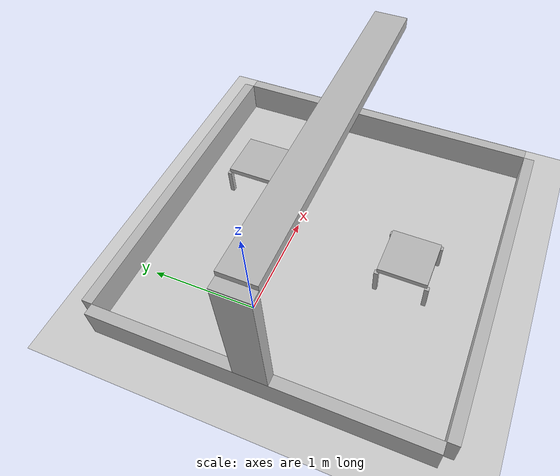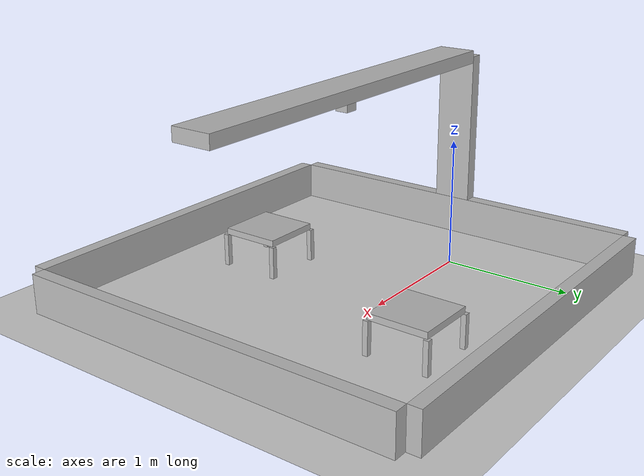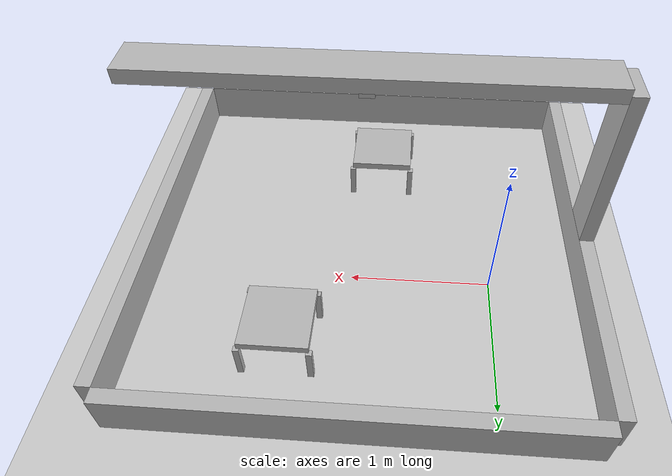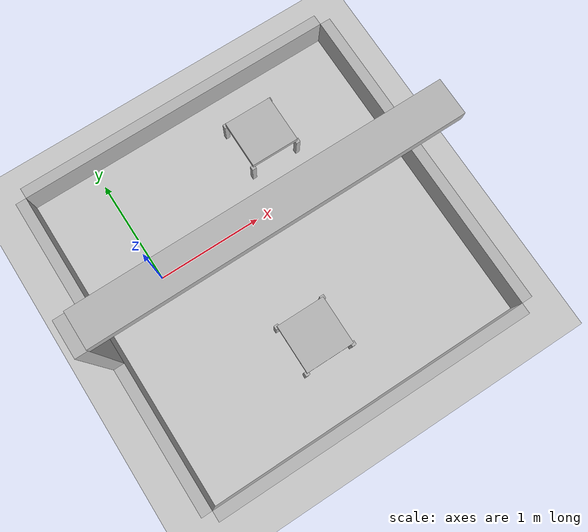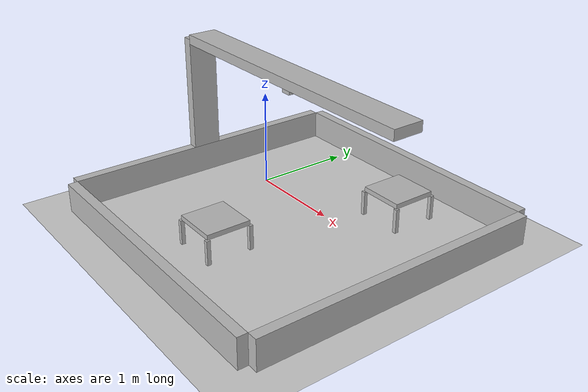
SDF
<sdf version="1.7">
 <world name="default">
  <light name="sun" type="directional">
   <pose>0 0 10 0 -0 0</pose>
   <diffuse>0.8 0.8 0.8 1</diffuse>
   <specular>0.2 0.2 0.2 1</specular>
   <attenuation>
    <range>1000</range>
    <constant>0.9</constant>
    <linear>0.01</linear>
    <quadratic>0.001</quadratic>
   </attenuation>
   <direction>-0.5 0.1 -0.9</direction>
   <spot><inner_angle>0</inner_angle><outer_angle>0</outer_angle><falloff>0</falloff></spot>
  </light>
  <model name="ground_plane">
   <static>1</static>
   <link name="link">
    <collision name="collision">
     <geometry><plane><normal>0 0 1</normal><size>100 100</size></plane></geometry>
     <surface><friction><ode><mu>100</mu><mu2>50</mu2></ode></friction></surface>
    </collision>
    <visual name="visual">
     <cast_shadows>0</cast_shadows>
     <geometry><plane><normal>0 0 1</normal><size>100 100</size></plane></geometry>
     <material>
      <script><uri>file://media/materials/scripts/gazebo.material</uri><name>Gazebo/Grey</name></script>
     </material>
    </visual>
   </link>
  </model>
  <gravity>0 0 -9.8</gravity>
  <magnetic_field>6e-06 2.3e-05 -4.2e-05</magnetic_field>
  <atmosphere type="adiabatic"/>
  <physics type="ode">
   <max_step_size>0.001</max_step_size>
   <real_time_factor>1</real_time_factor>
   <real_time_update_rate>1000</real_time_update_rate>
  </physics>
  <scene><ambient>0.4 0.4 0.4 1</ambient><background>0.7 0.7 0.7 1</background><shadows>1</shadows></scene>
  <spherical_coordinates>
   <surface_model>EARTH_WGS84</surface_model>
   <latitude_deg>0</latitude_deg>
   <longitude_deg>0</longitude_deg>
   <elevation>0</elevation>
   <heading_deg>0</heading_deg>
  </spherical_coordinates>
  <model name="bounding_box">
   <static>1</static>
   <link name="left_wall">
    <pose>0 -1.5748 0.1524 0 -0 0</pose>
    <collision name="left_wall_collision">
     <geometry><box><size>3.048 0.1016 0.3048</size></box></geometry>
     <surface><friction><ode><mu>100</mu><mu2>50</mu2></ode></friction></surface>
    </collision>
    <visual name="left_wall_visual"><geometry><box><size>3.048 0.1016 0.3048</size></box></geometry></visual>
   </link>
   <link name="right_wall">
    <pose>0 1.5748 0.1524 0 -0 0</pose>
    <collision name="right_wall_collision">
     <geometry><box><size>3.048 0.1016 0.3048</size></box></geometry>
     <surface><friction><ode><mu>100</mu><mu2>50</mu2></ode></friction></surface>
    </collision>
    <visual name="right_wall_visual"><geometry><box><size>3.048 0.1016 0.3048</size></box></geometry></visual>
   </link>
   <link name="top_wall">
    <pose>1.5748 0 0.1524 0 -0 1.5708</pose>
    <collision name="top_wall_collision">
     <geometry><box><size>3.048 0.1016 0.3048</size></box></geometry>
     <surface><friction><ode><mu>100</mu><mu2>50</mu2></ode></friction></surface>
    </collision>
    <visual name="top_wall_visual"><geometry><box><size>3.048 0.1016 0.3048</size></box></geometry></visual>
   </link>
   <link name="bottom_wall">
    <pose>-1.5748 0 0.1524 0 -0 1.5708</pose>
    <collision name="bottom_wall_collision">
     <geometry><box><size>3.048 0.1016 0.3048</size></box></geometry>
     <surface><friction><ode><mu>100</mu><mu2>50</mu2></ode></friction></surface>
    </collision>
    <visual name="bottom_wall_visual"><geometry><box><size>3.048 0.1016 0.3048</size></box></geometry></visual>
   </link>
   <link name="cam_mount_back">
    <pose>-1.5748 0 0.9144 -1.57079 1.57079 3.14159</pose>
    <collision name="cam_mount_back_collision">
     <geometry><box><size>1.2192 0.1016 0.3048</size></box></geometry>
     <surface><friction><ode><mu>100</mu><mu2>50</mu2></ode></friction></surface>
    </collision>
    <visual name="cam_mount_back_visual">
     <geometry><box><size>1.2192 0.1016 0.3048</size></box></geometry>
    </visual>
   </link>
   <link name="cam_mount_top">
    <pose>0 0 1.524 1.5708 -0 0</pose>
    <collision name="cam_mount_top_collision">
     <geometry><box><size>3.048 0.1016 0.3048</size></box></geometry>
     <surface><friction><ode><mu>100</mu><mu2>50</mu2></ode></friction></surface>
    </collision>
    <visual name="cam_mount_top_visual"><geometry><box><size>3.048 0.1016 0.3048</size></box></geometry></visual>
   </link>
   <link name="camera">
    <pose>0 0 1.4234 -1.57079 1.57079 3.14159</pose>
    <collision name="camera_collision">
     <geometry><box><size>0.1016 0.1016 0.1016</size></box></geometry>
    </collision>
    <visual name="camera_visual"><geometry><box><size>0.1016 0.1016 0.1016</size></box></geometry></visual>
    <sensor name="camera" type="depth">
     <always_on>0</always_on>
     <camera name="camera">
      <horizontal_fov>2.26893</horizontal_fov>
      <image><width>640</width><height>480</height></image>
      <clip><near>0.5</near><far>25</far></clip>
      <distortion><k1>0</k1><k2>0</k2><k3>0</k3><p1>0</p1><p2>0</p2><center>0 0</center></distortion>
     </camera>
     <plugin name="camera_controller" filename="libgazebo_ros_openni_kinect.so">
      <alwaysOn>1</alwaysOn>
      <updateRate>0.0</updateRate>
      <cameraName>camera</cameraName>
      <baseline>0.05</baseline>
      <pointCloudCutoff>0.05</pointCloudCutoff>
      <pointCloudCutoffMax>5</pointCloudCutoffMax>
      <imageTopicName>observer/image</imageTopicName>
      <depthImageTopicName>observer/depth/image</depthImageTopicName>
      <cameraInfoTopicName>observer/camera_info</cameraInfoTopicName>
      <depthImageCameraInfoTopicName>observer/depth/camera_info</depthImageCameraInfoTopicName>
      <pointCloudTopicName>observer/point_cloud/cloud_registered</pointCloudTopicName>
      <frameName>camera</frameName>
      <distortionK1>0.0</distortionK1>
      <distortionK2>0.0</distortionK2>
      <distortionK3>0.0</distortionK3>
      <distortionT1>0.0</distortionT1>
      <distortionT2>0.0</distortionT2>
     </plugin>
     <updateRate>20</updateRate>
    </sensor>
   </link>
   <joint name="left_top" type="fixed">
    <parent>left_wall</parent>
    <child>top_wall</child>
    <pose>0.762 0.0508 0 0 -0 0</pose>
   </joint>
   <joint name="left_bottom" type="fixed">
    <parent>left_wall</parent>
    <child>top_wall</child>
    <pose>-0.762 0.0508 0 0 -0 0</pose>
   </joint>
   <joint name="right_top" type="fixed">
    <parent>right_wall</parent>
    <child>top_wall</child>
    <pose>0.762 -0.0508 0 0 -0 0</pose>
   </joint>
   <joint name="right_bottom" type="fixed">
    <parent>right_wall</parent>
    <child>top_wall</child>
    <pose>-0.762 -0.0508 0 0 -0 0</pose>
   </joint>
   <pose>0.906692 -0.35656 0 0 -0 0</pose>
  </model>
  <model name="medium_box_1">
   <static>0</static>
   <link name="top">
    <pose>0 0 0.28 0 -0 0</pose>
    <collision name="collision">
     <geometry><box><size>0.46 0.46 0.05</size></box></geometry>
     <surface><friction><ode><mu>100</mu><mu2>50</mu2></ode></friction></surface>
    </collision>
    <visual name="visual"><geometry><box><size>0.46 0.46 0.05</size></box></geometry></visual>
    <inertial>
     <inertia><ixx>1</ixx><ixy>0</ixy><ixz>0</ixz><iyy>1</iyy><iyz>0</iyz><izz>1</izz></inertia>
     <mass>1</mass>
    </inertial>
   </link>
   <link name="leg_0">
    <pose>0.23 0.23 0.129 0 -0 0</pose>
    <collision name="collision">
     <geometry><box><size>0.04 0.04 0.254</size></box></geometry>
     <surface><friction><ode><mu>100</mu><mu2>50</mu2></ode></friction></surface>
    </collision>
    <visual name="visual"><geometry><box><size>0.04 0.04 0.254</size></box></geometry></visual>
    <inertial>
     <inertia><ixx>1</ixx><ixy>0</ixy><ixz>0</ixz><iyy>1</iyy><iyz>0</iyz><izz>1</izz></inertia>
     <mass>1</mass>
    </inertial>
   </link>
   <joint name="leg_0_joint" type="fixed">
    <parent>top</parent>
    <child>leg_0</child>
    <pose>0.23 0.23 0.254 0 -0 0</pose>
   </joint>
   <link name="leg_1">
    <pose>-0.23 0.23 0.129 0 -0 0</pose>
    <collision name="collision">
     <geometry><box><size>0.04 0.04 0.254</size></box></geometry>
     <surface><friction><ode><mu>100</mu><mu2>50</mu2></ode></friction></surface>
    </collision>
    <visual name="visual"><geometry><box><size>0.04 0.04 0.254</size></box></geometry></visual>
    <inertial>
     <inertia><ixx>1</ixx><ixy>0</ixy><ixz>0</ixz><iyy>1</iyy><iyz>0</iyz><izz>1</izz></inertia>
     <mass>1</mass>
    </inertial>
   </link>
   <joint name="leg_1_joint" type="fixed">
    <parent>top</parent>
    <child>leg_1</child>
    <pose>-0.23 0.23 0.254 0 -0 0</pose>
   </joint>
   <link name="leg_2">
    <pose>0.23 -0.23 0.129 0 -0 0</pose>
    <collision name="collision">
     <geometry><box><size>0.04 0.04 0.254</size></box></geometry>
     <surface><friction><ode><mu>100</mu><mu2>50</mu2></ode></friction></surface>
    </collision>
    <visual name="visual"><geometry><box><size>0.04 0.04 0.254</size></box></geometry></visual>
    <inertial>
     <inertia><ixx>1</ixx><ixy>0</ixy><ixz>0</ixz><iyy>1</iyy><iyz>0</iyz><izz>1</izz></inertia>
     <mass>1</mass>
    </inertial>
   </link>
   <joint name="leg_2_joint" type="fixed">
    <parent>top</parent>
    <child>leg_2</child>
    <pose>0.23 -0.23 0.254 0 -0 0</pose>
   </joint>
   <link name="leg_3">
    <pose>-0.23 -0.23 0.129 0 -0 0</pose>
    <collision name="collision">
     <geometry><box><size>0.04 0.04 0.254</size></box></geometry>
     <surface><friction><ode><mu>100</mu><mu2>50</mu2></ode></friction></surface>
    </collision>
    <visual name="visual"><geometry><box><size>0.04 0.04 0.254</size></box></geometry></visual>
    <inertial>
     <inertia><ixx>1</ixx><ixy>0</ixy><ixz>0</ixz><iyy>1</iyy><iyz>0</iyz><izz>1</izz></inertia>
     <mass>1</mass>
    </inertial>
   </link>
   <joint name="leg_3_joint" type="fixed">
    <parent>top</parent>
    <child>leg_3</child>
    <pose>-0.23 -0.23 0.254 0 -0 0</pose>
   </joint>
   <pose>1.42049 0.586853 -0.002 1e-06 1e-06 -0.003442</pose>
  </model>
  <model name="medium_box_2">
   <static>0</static>
   <link name="top">
    <pose>0 0 0.28 0 -0 0</pose>
    <collision name="collision">
     <geometry><box><size>0.46 0.46 0.05</size></box></geometry>
     <surface><friction><ode><mu>100</mu><mu2>50</mu2></ode></friction></surface>
    </collision>
    <visual name="visual"><geometry><box><size>0.46 0.46 0.05</size></box></geometry></visual>
    <inertial>
     <inertia><ixx>1</ixx><ixy>0</ixy><ixz>0</ixz><iyy>1</iyy><iyz>0</iyz><izz>1</izz></inertia>
     <mass>1</mass>
    </inertial>
   </link>
   <link name="leg_0">
    <pose>0.23 0.23 0.129 0 -0 0</pose>
    <collision name="collision">
     <geometry><box><size>0.04 0.04 0.254</size></box></geometry>
     <surface><friction><ode><mu>100</mu><mu2>50</mu2></ode></friction></surface>
    </collision>
    <visual name="visual"><geometry><box><size>0.04 0.04 0.254</size></box></geometry></visual>
    <inertial>
     <inertia><ixx>1</ixx><ixy>0</ixy><ixz>0</ixz><iyy>1</iyy><iyz>0</iyz><izz>1</izz></inertia>
     <mass>1</mass>
    </inertial>
   </link>
   <joint name="leg_0_joint" type="fixed">
    <parent>top</parent>
    <child>leg_0</child>
    <pose>0.23 0.23 0.254 0 -0 0</pose>
   </joint>
   <link name="leg_1">
    <pose>-0.23 0.23 0.129 0 -0 0</pose>
    <collision name="collision">
     <geometry><box><size>0.04 0.04 0.254</size></box></geometry>
     <surface><friction><ode><mu>100</mu><mu2>50</mu2></ode></friction></surface>
    </collision>
    <visual name="visual"><geometry><box><size>0.04 0.04 0.254</size></box></geometry></visual>
    <inertial>
     <inertia><ixx>1</ixx><ixy>0</ixy><ixz>0</ixz><iyy>1</iyy><iyz>0</iyz><izz>1</izz></inertia>
     <mass>1</mass>
    </inertial>
   </link>
   <joint name="leg_1_joint" type="fixed">
    <parent>top</parent>
    <child>leg_1</child>
    <pose>-0.23 0.23 0.254 0 -0 0</pose>
   </joint>
   <link name="leg_2">
    <pose>0.23 -0.23 0.129 0 -0 0</pose>
    <collision name="collision">
     <geometry><box><size>0.04 0.04 0.254</size></box></geometry>
     <surface><friction><ode><mu>100</mu><mu2>50</mu2></ode></friction></surface>
    </collision>
    <visual name="visual"><geometry><box><size>0.04 0.04 0.254</size></box></geometry></visual>
    <inertial>
     <inertia><ixx>1</ixx><ixy>0</ixy><ixz>0</ixz><iyy>1</iyy><iyz>0</iyz><izz>1</izz></inertia>
     <mass>1</mass>
    </inertial>
   </link>
   <joint name="leg_2_joint" type="fixed">
    <parent>top</parent>
    <child>leg_2</child>
    <pose>0.23 -0.23 0.254 0 -0 0</pose>
   </joint>
   <link name="leg_3">
    <pose>-0.23 -0.23 0.129 0 -0 0</pose>
    <collision name="collision">
     <geometry><box><size>0.04 0.04 0.254</size></box></geometry>
     <surface><friction><ode><mu>100</mu><mu2>50</mu2></ode></friction></surface>
    </collision>
    <visual name="visual"><geometry><box><size>0.04 0.04 0.254</size></box></geometry></visual>
    <inertial>
     <inertia><ixx>1</ixx><ixy>0</ixy><ixz>0</ixz><iyy>1</iyy><iyz>0</iyz><izz>1</izz></inertia>
     <mass>1</mass>
    </inertial>
   </link>
   <joint name="leg_3_joint" type="fixed">
    <parent>top</parent>
    <child>leg_3</child>
    <pose>-0.23 -0.23 0.254 0 -0 0</pose>
   </joint>
   <pose>0.83143 -1.16147 -0.002 1e-06 1e-06 -0.001915</pose>
  </model>
 </world>
</sdf>
